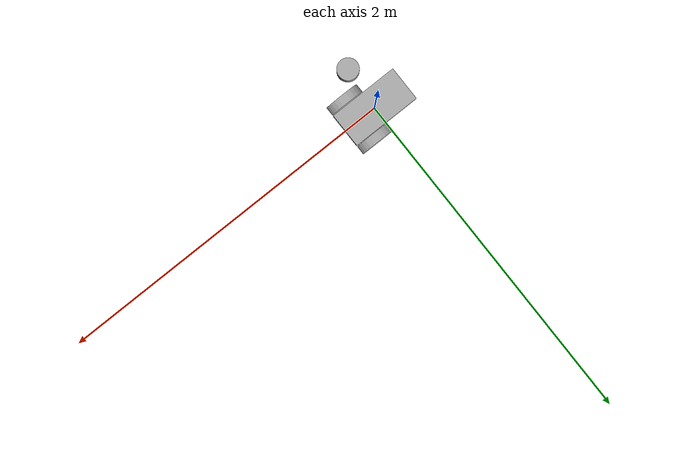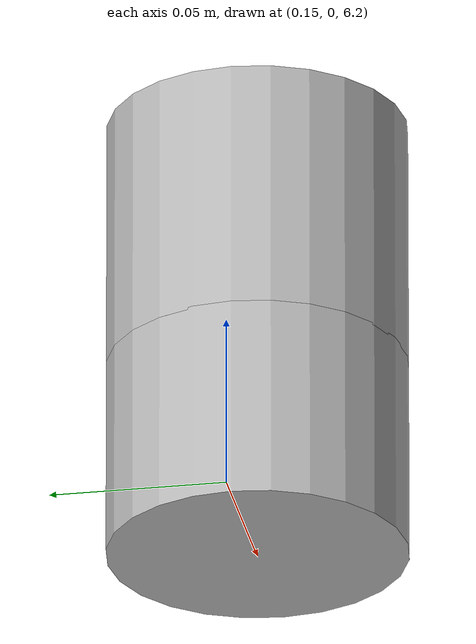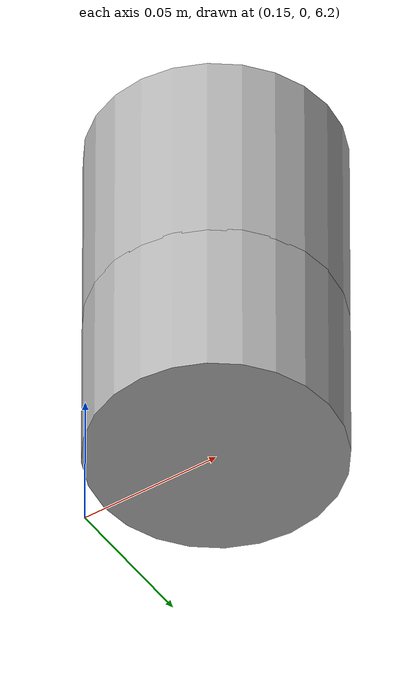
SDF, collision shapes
<?xml version='1.0'?>
    <sdf version='1.4'>
        <model name="my_robot">
            <static>false</static>
        <link name='chassis'>
          <pose>0 0 .1 0 0 0</pose>
          <collision name='collision'>
            <geometry>
              <box>
                <size>.4 .2 .1</size>
              </box>
            </geometry>
          </collision>

          <visual name='visual'>
            <pose>0 0 0.05 0 0 0</pose>
            <geometry>
                <mesh>
                    <uri>model://pioneer2dx/meshes/chassis.dae</uri>
                    <scale>0.9 0.5 0.5</scale>
                </mesh>
            </geometry>
          </visual>

          <collision name='caster_collision'>
            <pose>-0.15 0 -0.05 0 0 0</pose>
            <geometry>
              <sphere>
              <radius>.05</radius>
            </sphere>
          </geometry>

          <surface>
            <friction>
              <ode>
                <mu>0</mu>
                <mu2>0</mu2>
                <slip1>1.0</slip1>
                <slip2>1.0</slip2>
              </ode>
            </friction>
          </surface>
        </collision>

        <visual name='caster_visual'>
          <pose>-0.15 0 -0.05 0 0 0</pose>
          <geometry>
            <sphere>
              <radius>.05</radius>
            </sphere>
          </geometry>
        </visual>
      </link>
      <link name="left_wheel">
        <pose>0.1 0.13 0.1 0 1.5707 1.5707</pose>
        <collision name="collision">
          <geometry>
            <cylinder>
              <radius>.1</radius>
              <length>.05</length>
            </cylinder>
          </geometry>
        </collision>
        <visual name="visual">
          <geometry>
            <cylinder>
              <radius>.1</radius>
              <length>.05</length>
            </cylinder>
          </geometry>
        </visual>
      </link>

      <link name="right_wheel">
        <pose>0.1 -0.13 0.1 0 1.5707 1.5707</pose>
        <collision name="collision">
          <geometry>
            <cylinder>
              <radius>.1</radius>
              <length>.05</length>
            </cylinder>
          </geometry>
        </collision>
        <visual name="visual">
          <geometry>
            <cylinder>
              <radius>.1</radius>
              <length>.05</length>
            </cylinder>
          </geometry>
        </visual>
      </link>
      <joint type="revolute" name="left_wheel_hinge">
        <pose>0 0 -0.03 0 0 0</pose>
        <child>left_wheel</child>
        <parent>chassis</parent>
        <axis>
          <xyz>0 1 0</xyz>
        </axis>
      </joint>

      <joint type="revolute" name="right_wheel_hinge">
        <pose>0 0 0.03 0 0 0</pose>
        <child>right_wheel</child>
        <parent>chassis</parent>
        <axis>
          <xyz>0 1 0</xyz>
        </axis>
      </joint>
      <!--hokuyo,velodyne_hdl32-->

        <model name='velodyne'>
            <link name='base'>
                <pose frame=''>0 0 0.03 0 -0 0</pose>
                <inertial>
                <mass>0.1</mass>
                <inertia>
                    <ixx>0.00108747</ixx>
                    <iyy>0.00108747</iyy>
                    <izz>0.00109244</izz>
                    <ixy>0</ixy>
                    <ixz>0</ixz>
                    <iyz>0</iyz>
                </inertia>
                </inertial>
                <collision name='base_collision'>
                <geometry>
                    <cylinder>
                    <radius>0.04267</radius>
                    <length>0.05867</length>
                    </cylinder>
                </geometry>
                </collision>
                <visual name='base_visual'>
                <pose frame=''>0 0 -0.029335 0 -0 0</pose>
                <geometry>
                    <mesh>
                    <uri>model://velodyne_hdl32/meshes/velodyne_base.dae</uri>
                    </mesh>
                </geometry>
                </visual>
            </link>
            <link name='top'>
                <pose frame=''>0 0 0.095455 0 -0 0</pose>
                <inertial>
                <mass>0.1</mass>
                <inertia>
                    <ixx>9.0623e-05</ixx>
                    <iyy>9.0623e-05</iyy>
                    <izz>9.1036e-05</izz>
                    <ixy>0</ixy>
                    <ixz>0</ixz>
                    <iyz>0</iyz>
                </inertia>
                </inertial>
                <collision name='top_collision'>
                <geometry>
                    <cylinder>
                    <radius>0.04267</radius>
                    <length>0.07357</length>
                    </cylinder>
                </geometry>
                </collision>
                <visual name='top_visual'>
                <pose frame=''>0 0 -0.037679 0 -0 1.5707</pose>
                <geometry>
                    <mesh>
                    <uri>model://velodyne_hdl32/meshes/velodyne_top.dae</uri>
                    </mesh>
                </geometry>
                </visual>
                <sensor name='HDL-32E-HDL32E' type='ray'>
                <pose frame=''>0 0 -0.004645 1.5707 -0 0</pose>
                <visualize>0</visualize>
                <update_rate>30</update_rate>
                <ray>
                    <noise>
                    <type>gaussian</type>
                    <mean>0</mean>
                    <stddev>0.1</stddev>
                    </noise>
                    <scan>
                    <horizontal>
                        <samples>32</samples>
                        <resolution>2187</resolution>
                        <min_angle>-3.1415926535897931</min_angle>
                        <max_angle>3.1415926535897931</max_angle>
                    </horizontal>
                    </scan>
                    <range>
                    <min>0.1</min>
                    <max>70</max>
                    <resolution>0.02</resolution>
                    </range>
                </ray>
                </sensor>
            </link>
            <joint name='velodyne-joint' type='revolute'>
                <pose frame=''>0 0 -0.036785 0 -0 0</pose>
                <parent>base</parent>
                <child>top</child>
                <axis>
                <xyz>0 0 1</xyz>
                <limit>
                    <lower>-1e+16</lower>
                    <upper>1e+16</upper>
                </limit>
                <use_parent_model_frame>0</use_parent_model_frame>
                </axis>
            </joint>
            <pose>0.2 0 6.2 0 0 0</pose>
        </model>
        <joint name='velodyne-to-base-joint' type='fixed'>
            <child>velodyne::base</child>
            <parent>chassis</parent>
        </joint>

    </model>

</sdf>
